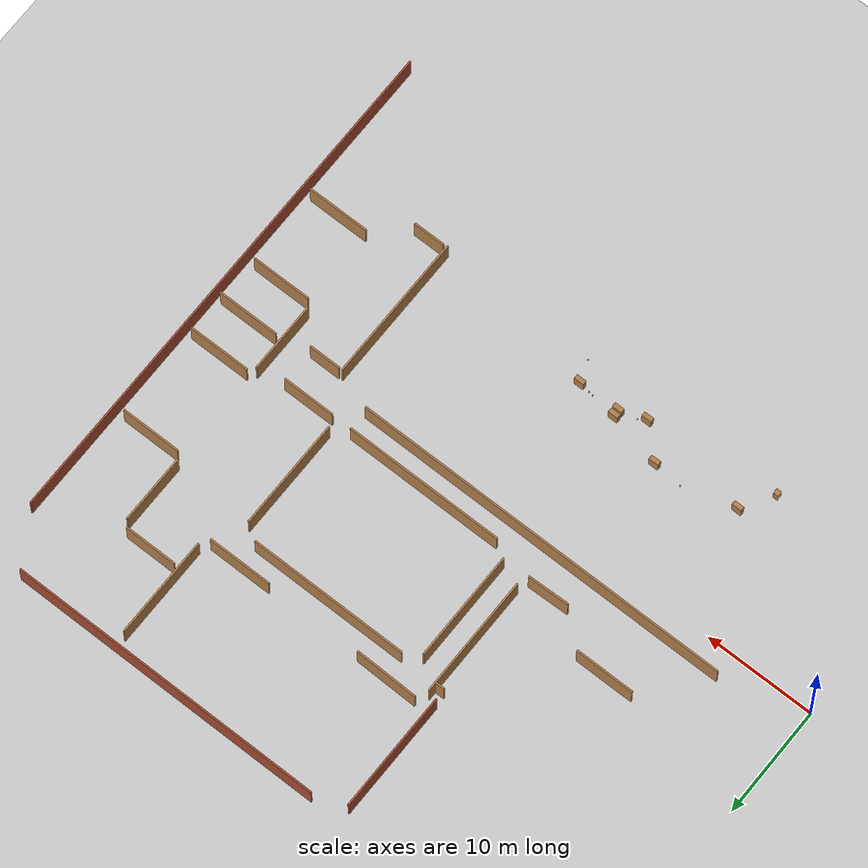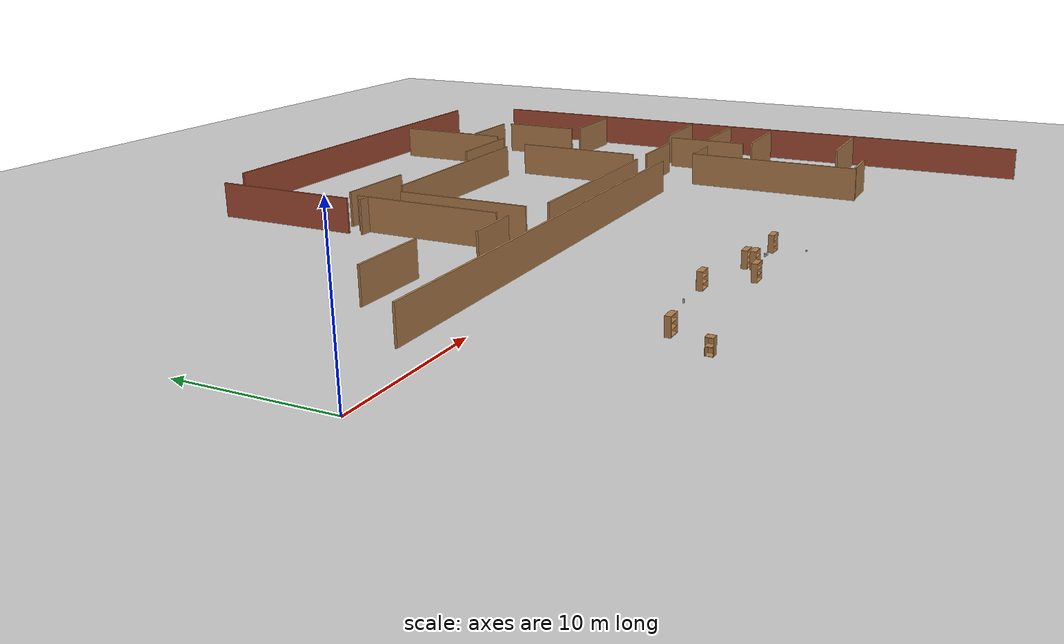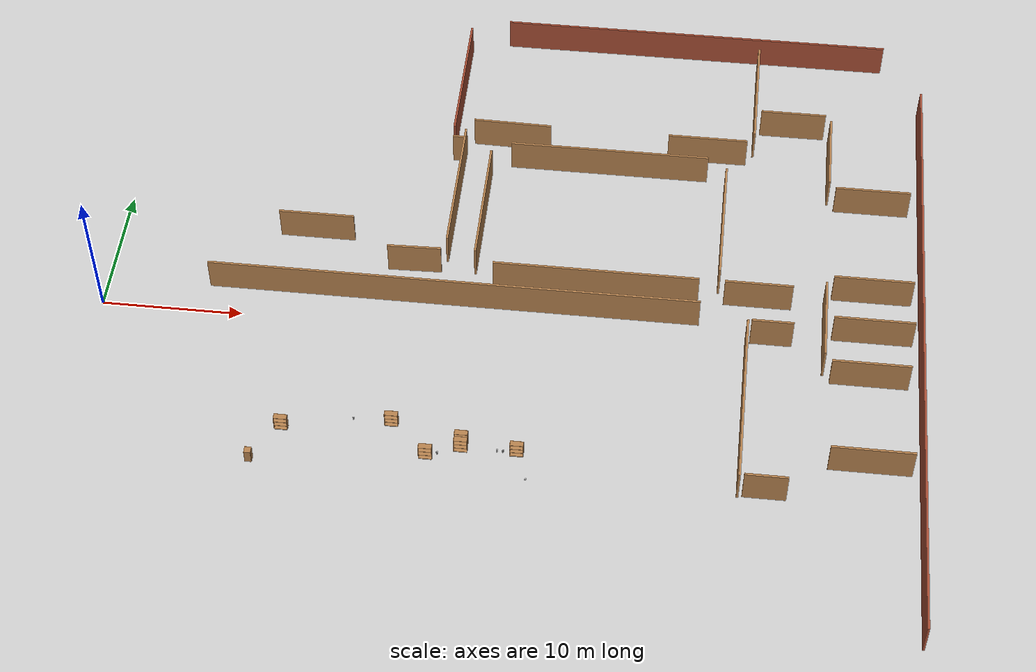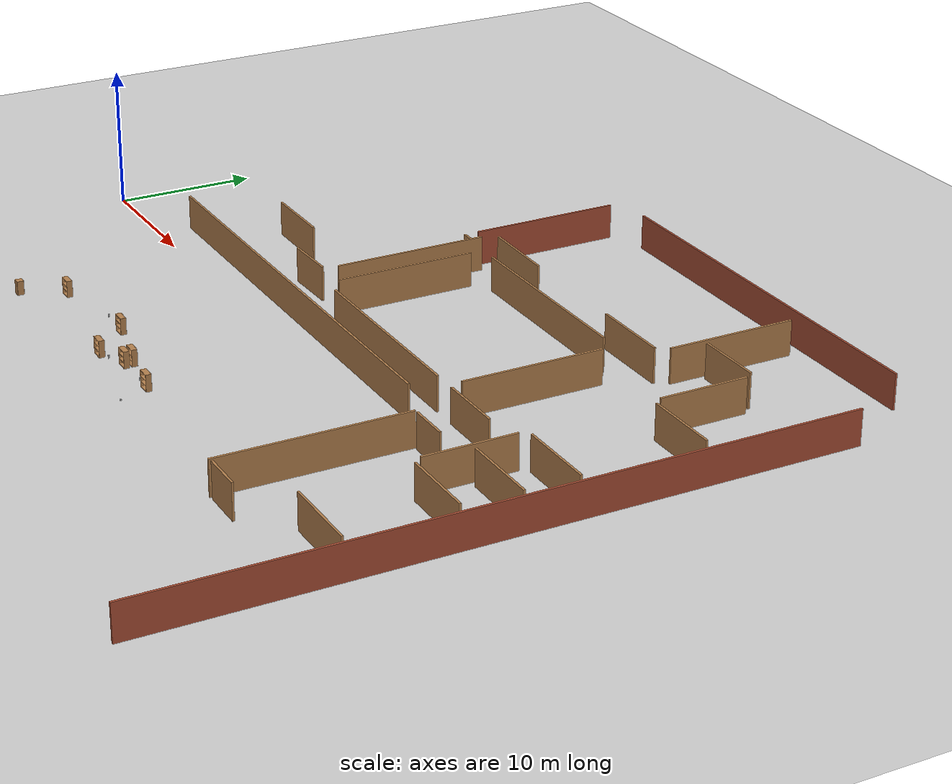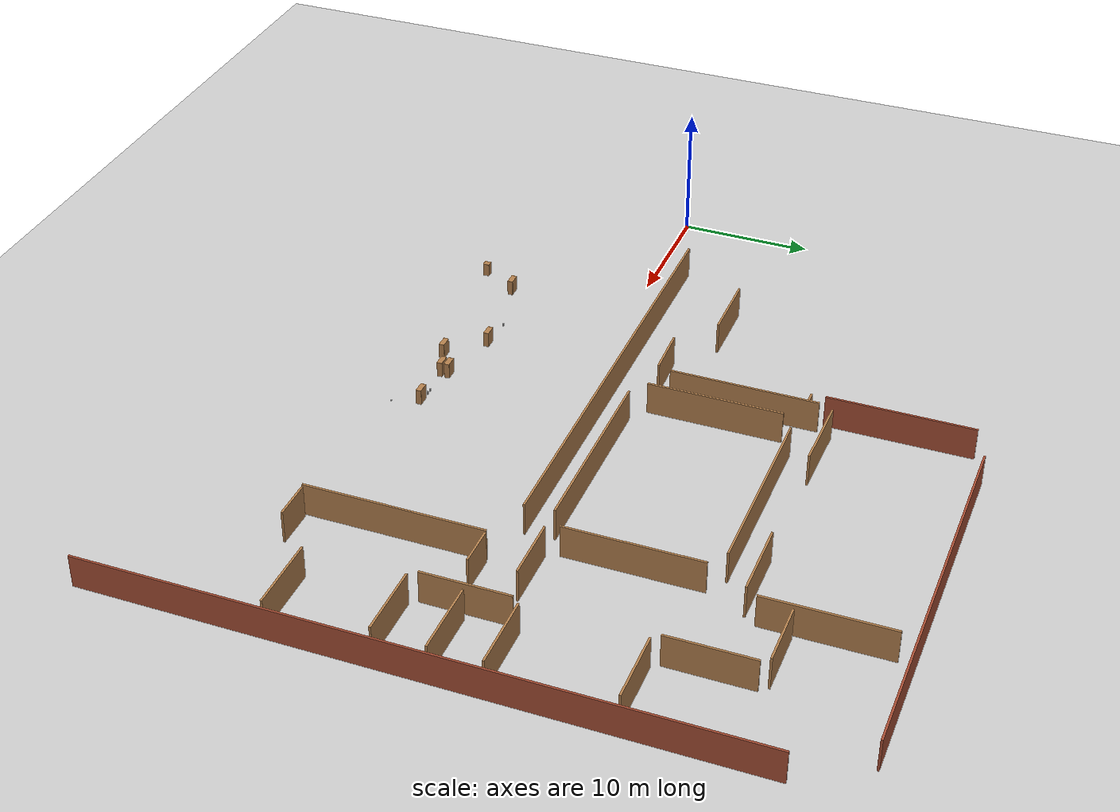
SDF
<sdf version="1.6">
 <world name="default">
  <model name="ground_plane">
   <static>1</static>
   <link name="link">
    <collision name="collision">
     <geometry><plane><normal>0 0 1</normal><size>100 100</size></plane></geometry>
     <surface><friction><ode><mu>100</mu><mu2>50</mu2></ode></friction></surface>
    </collision>
    <visual name="visual">
     <cast_shadows>0</cast_shadows>
     <geometry><plane><normal>0 0 1</normal><size>100 100</size></plane></geometry>
     <material>
      <script><uri>file://media/materials/scripts/gazebo.material</uri><name>Gazebo/Grey</name></script>
     </material>
    </visual>
   </link>
  </model>
  <model name="floorPlan">
   <pose>6.7155 -5.3556 0 0 -0 0</pose>
   <link name="Wall_105">
    <collision name="Wall_105_Collision">
     <geometry><box><size>10.83 0.15 2.5</size></box></geometry>
     <pose>0 0 1.25 0 -0 0</pose>
    </collision>
    <visual name="Wall_105_Visual">
     <pose>0 0 1.25 0 -0 0</pose>
     <geometry><box><size>10.83 0.15 2.5</size></box></geometry>
     <material>
      <script><uri>file://media/materials/scripts/gazebo.material</uri><name>Gazebo/Bricks</name></script>
      <ambient>1 1 1 1</ambient>
     </material>
     <meta><layer>0</layer></meta>
    </visual>
    <pose>16.1718 28.4394 0 0 0 -1.5708</pose>
   </link>
   <link name="Wall_107">
    <collision name="Wall_107_Collision">
     <geometry><box><size>0.83 0.15 2.5</size></box></geometry>
     <pose>0 0 1.25 0 -0 0</pose>
    </collision>
    <visual name="Wall_107_Visual">
     <pose>0 0 1.25 0 -0 0</pose>
     <geometry><box><size>0.83 0.15 2.5</size></box></geometry>
     <material>
      <script><uri>file://media/materials/scripts/gazebo.material</uri><name>Gazebo/Wood</name></script>
      <ambient>1 1 1 1</ambient>
     </material>
     <meta><layer>0</layer></meta>
    </visual>
    <pose>16.5968 22.0144 0 0 -0 0</pose>
   </link>
   <link name="Wall_246">
    <collision name="Wall_246_Collision">
     <geometry><box><size>5.62 0.15 2.5</size></box></geometry>
     <pose>0 0 1.25 0 -0 0</pose>
    </collision>
    <visual name="Wall_246_Visual">
     <pose>0 0 1.25 0 -0 0</pose>
     <geometry><box><size>5.62 0.15 2.5</size></box></geometry>
     <material>
      <script><uri>file://media/materials/scripts/gazebo.material</uri><name>Gazebo/Wood</name></script>
      <ambient>1 1 1 1</ambient>
     </material>
     <meta><layer>0</layer></meta>
    </visual>
    <pose>47.426 7.42213 0 0 -0 0</pose>
   </link>
   <link name="Wall_248">
    <collision name="Wall_248_Collision">
     <geometry><box><size>13.29 0.15 2.5</size></box></geometry>
     <pose>0 0 1.25 0 -0 0</pose>
    </collision>
    <visual name="Wall_248_Visual">
     <pose>0 0 1.25 0 -0 0</pose>
     <geometry><box><size>13.29 0.15 2.5</size></box></geometry>
     <material>
      <script><uri>file://media/materials/scripts/gazebo.material</uri><name>Gazebo/Wood</name></script>
      <ambient>1 1 1 1</ambient>
     </material>
     <meta><layer>0</layer></meta>
    </visual>
    <pose>38.697 -0.105323 0 0 0 -1.57178</pose>
   </link>
   <link name="Wall_30">
    <collision name="Wall_30_Collision">
     <geometry><box><size>34.78 0.15 2.5</size></box></geometry>
     <pose>0 0 1.25 0 -0 0</pose>
    </collision>
    <visual name="Wall_30_Visual">
     <pose>0 0 1.25 0 -0 0</pose>
     <geometry><box><size>34.78 0.15 2.5</size></box></geometry>
     <material>
      <script><uri>file://media/materials/scripts/gazebo.material</uri><name>Gazebo/Wood</name></script>
      <ambient>1 1 1 1</ambient>
     </material>
     <meta><layer>0</layer></meta>
    </visual>
    <pose>17.958 7.79684 0 0 -0 3.14159</pose>
   </link>
   <link name="Wall_40">
    <collision name="Wall_40_Collision">
     <geometry><box><size>3.82 0.15 2.5</size></box></geometry>
     <pose>0 0 1.25 0 -0 0</pose>
    </collision>
    <visual name="Wall_40_Visual">
     <pose>0 0 1.25 0 -0 0</pose>
     <geometry><box><size>3.82 0.15 2.5</size></box></geometry>
     <material>
      <script><uri>file://media/materials/scripts/gazebo.material</uri><name>Gazebo/Wood</name></script>
      <ambient>1 1 1 1</ambient>
     </material>
     <meta><layer>0</layer></meta>
    </visual>
    <pose>14.8546 10.7422 0 0 -0 0.027081</pose>
   </link>
   <link name="Wall_41">
    <collision name="Wall_41_Collision">
     <geometry><box><size>11.04 0.15 2.5</size></box></geometry>
     <pose>0 0 1.25 0 -0 0</pose>
    </collision>
    <visual name="Wall_41_Visual">
     <pose>0 0 1.25 0 -0 0</pose>
     <geometry><box><size>11.04 0.15 2.5</size></box></geometry>
     <material>
      <script><uri>file://media/materials/scripts/gazebo.material</uri><name>Gazebo/Wood</name></script>
      <ambient>1 1 1 1</ambient>
     </material>
     <meta><layer>0</layer></meta>
    </visual>
    <pose>17.0696 17.3122 0 0 -0 1.5708</pose>
   </link>
   <link name="Wall_43">
    <collision name="Wall_43_Collision">
     <geometry><box><size>5.41 0.15 2.5</size></box></geometry>
     <pose>0 0 1.25 0 -0 0</pose>
    </collision>
    <visual name="Wall_43_Visual">
     <pose>0 0 1.25 0 -0 0</pose>
     <geometry><box><size>5.41 0.15 2.5</size></box></geometry>
     <material>
      <script><uri>file://media/materials/scripts/gazebo.material</uri><name>Gazebo/Wood</name></script>
      <ambient>1 1 1 1</ambient>
     </material>
     <meta><layer>0</layer></meta>
    </visual>
    <pose>7.4365 13.1926 0 0 -0 0</pose>
   </link>
   <link name="Wall_45">
    <collision name="Wall_45_Collision">
     <geometry><box><size>14.58 0.15 2.5</size></box></geometry>
     <pose>0 0 1.25 0 -0 0</pose>
    </collision>
    <visual name="Wall_45_Visual">
     <pose>0 0 1.25 0 -0 0</pose>
     <geometry><box><size>14.58 0.15 2.5</size></box></geometry>
     <material>
      <script><uri>file://media/materials/scripts/gazebo.material</uri><name>Gazebo/Wood</name></script>
      <ambient>1 1 1 1</ambient>
     </material>
     <meta><layer>0</layer></meta>
    </visual>
    <pose>27.8734 9.89578 0 0 -0 3.14159</pose>
   </link>
   <link name="Wall_46">
    <collision name="Wall_46_Collision">
     <geometry><box><size>10 0.15 2.5</size></box></geometry>
     <pose>0 0 1.25 0 -0 0</pose>
    </collision>
    <visual name="Wall_46_Visual">
     <pose>0 0 1.25 0 -0 0</pose>
     <geometry><box><size>10 0.15 2.5</size></box></geometry>
     <material>
      <script><uri>file://media/materials/scripts/gazebo.material</uri><name>Gazebo/Wood</name></script>
      <ambient>1 1 1 1</ambient>
     </material>
     <meta><layer>0</layer></meta>
    </visual>
    <pose>19.1984 15.8208 0 0 -0 1.5708</pose>
   </link>
   <link name="Wall_57">
    <collision name="Wall_57_Collision">
     <geometry><box><size>10 0.15 2.5</size></box></geometry>
     <pose>0 0 1.25 0 -0 0</pose>
    </collision>
    <visual name="Wall_57_Visual">
     <pose>0 0 1.25 0 -0 0</pose>
     <geometry><box><size>10 0.15 2.5</size></box></geometry>
     <material>
      <script><uri>file://media/materials/scripts/gazebo.material</uri><name>Gazebo/Wood</name></script>
      <ambient>1 1 1 1</ambient>
     </material>
     <meta><layer>0</layer></meta>
    </visual>
    <pose>36.5484 15.8208 0 0 -0 1.5708</pose>
   </link>
   <link name="Wall_59">
    <collision name="Wall_59_Collision">
     <geometry><box><size>14.58 0.15 2.5</size></box></geometry>
     <pose>0 0 1.25 0 -0 0</pose>
    </collision>
    <visual name="Wall_59_Visual">
     <pose>0 0 1.25 0 -0 0</pose>
     <geometry><box><size>14.58 0.15 2.5</size></box></geometry>
     <material>
      <script><uri>file://media/materials/scripts/gazebo.material</uri><name>Gazebo/Wood</name></script>
      <ambient>1 1 1 1</ambient>
     </material>
     <meta><layer>0</layer></meta>
    </visual>
    <pose>27.8734 21.7458 0 0 -0 0</pose>
   </link>
   <link name="Wall_61">
    <collision name="Wall_61_Collision">
     <geometry><box><size>5.76 0.15 2.5</size></box></geometry>
     <pose>0 0 1.25 0 -0 0</pose>
    </collision>
    <visual name="Wall_61_Visual">
     <pose>0 0 1.25 0 -0 0</pose>
     <geometry><box><size>5.76 0.15 2.5</size></box></geometry>
     <material>
      <script><uri>file://media/materials/scripts/gazebo.material</uri><name>Gazebo/Wood</name></script>
      <ambient>1 1 1 1</ambient>
     </material>
     <meta><layer>0</layer></meta>
    </visual>
    <pose>20.4546 23.8422 0 0 0 -0.017723</pose>
   </link>
   <link name="Wall_63">
    <collision name="Wall_63_Collision">
     <geometry><box><size>5.83 0.15 2.5</size></box></geometry>
     <pose>0 0 1.25 0 -0 0</pose>
    </collision>
    <visual name="Wall_63_Visual">
     <pose>0 0 1.25 0 -0 0</pose>
     <geometry><box><size>5.83 0.15 2.5</size></box></geometry>
     <material>
      <script><uri>file://media/materials/scripts/gazebo.material</uri><name>Gazebo/Wood</name></script>
      <ambient>1 1 1 1</ambient>
     </material>
     <meta><layer>0</layer></meta>
    </visual>
    <pose>35.0287 23.7786 0 0 -0 0</pose>
   </link>
   <link name="Wall_64">
    <collision name="Wall_64_Collision">
     <geometry><box><size>9.16 0.15 2.5</size></box></geometry>
     <pose>0 0 1.25 0 -0 0</pose>
    </collision>
    <visual name="Wall_64_Visual">
     <pose>0 0 1.25 0 -0 0</pose>
     <geometry><box><size>9.16 0.15 2.5</size></box></geometry>
     <material>
      <script><uri>file://media/materials/scripts/gazebo.material</uri><name>Gazebo/Wood</name></script>
      <ambient>1 1 1 1</ambient>
     </material>
     <meta><layer>0</layer></meta>
    </visual>
    <pose>38.4537 29.2036 0 0 -0 1.5708</pose>
   </link>
   <link name="Wall_66">
    <collision name="Wall_66_Collision">
     <geometry><box><size>4.79 0.15 2.5</size></box></geometry>
     <pose>0 0 1.25 0 -0 0</pose>
    </collision>
    <visual name="Wall_66_Visual">
     <pose>0 0 1.25 0 -0 0</pose>
     <geometry><box><size>4.79 0.15 2.5</size></box></geometry>
     <material>
      <script><uri>file://media/materials/scripts/gazebo.material</uri><name>Gazebo/Wood</name></script>
      <ambient>1 1 1 1</ambient>
     </material>
     <meta><layer>0</layer></meta>
    </visual>
    <pose>41.2694 27.0754 0 0 -0 0</pose>
   </link>
   <link name="Wall_67">
    <collision name="Wall_67_Collision">
     <geometry><box><size>6.25 0.15 2.5</size></box></geometry>
     <pose>0 0 1.25 0 -0 0</pose>
    </collision>
    <visual name="Wall_67_Visual">
     <pose>0 0 1.25 0 -0 0</pose>
     <geometry><box><size>6.25 0.15 2.5</size></box></geometry>
     <material>
      <script><uri>file://media/materials/scripts/gazebo.material</uri><name>Gazebo/Wood</name></script>
      <ambient>1 1 1 1</ambient>
     </material>
     <meta><layer>0</layer></meta>
    </visual>
    <pose>44.0694 23.4004 0 0 0 -1.5708</pose>
   </link>
   <link name="Wall_68">
    <collision name="Wall_68_Collision">
     <geometry><box><size>5.41 0.15 2.5</size></box></geometry>
     <pose>0 0 1.25 0 -0 0</pose>
    </collision>
    <visual name="Wall_68_Visual">
     <pose>0 0 1.25 0 -0 0</pose>
     <geometry><box><size>5.41 0.15 2.5</size></box></geometry>
     <material>
      <script><uri>file://media/materials/scripts/gazebo.material</uri><name>Gazebo/Wood</name></script>
      <ambient>1 1 1 1</ambient>
     </material>
     <meta><layer>0</layer></meta>
    </visual>
    <pose>47.2444 19.7254 0 0 -0 0</pose>
   </link>
   <link name="Wall_70">
    <collision name="Wall_70_Collision">
     <geometry><box><size>4.79 0.15 2.5</size></box></geometry>
     <pose>0 0 1.25 0 -0 0</pose>
    </collision>
    <visual name="Wall_70_Visual">
     <pose>0 0 1.25 0 -0 0</pose>
     <geometry><box><size>4.79 0.15 2.5</size></box></geometry>
     <material>
      <script><uri>file://media/materials/scripts/gazebo.material</uri><name>Gazebo/Wood</name></script>
      <ambient>1 1 1 1</ambient>
     </material>
     <meta><layer>0</layer></meta>
    </visual>
    <pose>39.3484 9.89578 0 0 -0 0</pose>
   </link>
   <link name="Wall_72">
    <collision name="Wall_72_Collision">
     <geometry><box><size>5.62 0.15 2.5</size></box></geometry>
     <pose>0 0 1.25 0 -0 0</pose>
    </collision>
    <visual name="Wall_72_Visual">
     <pose>0 0 1.25 0 -0 0</pose>
     <geometry><box><size>5.62 0.15 2.5</size></box></geometry>
     <material>
      <script><uri>file://media/materials/scripts/gazebo.material</uri><name>Gazebo/Wood</name></script>
      <ambient>1 1 1 1</ambient>
     </material>
     <meta><layer>0</layer></meta>
    </visual>
    <pose>47.3585 11.1359 0 0 -0 3.14159</pose>
   </link>
   <link name="Wall_73">
    <collision name="Wall_73_Collision">
     <geometry><box><size>6.46 0.15 2.5</size></box></geometry>
     <pose>0 0 1.25 0 -0 0</pose>
    </collision>
    <visual name="Wall_73_Visual">
     <pose>0 0 1.25 0 -0 0</pose>
     <geometry><box><size>6.46 0.15 2.5</size></box></geometry>
     <material>
      <script><uri>file://media/materials/scripts/gazebo.material</uri><name>Gazebo/Wood</name></script>
      <ambient>1 1 1 1</ambient>
     </material>
     <meta><layer>0</layer></meta>
    </visual>
    <pose>44.0585 7.33585 0 0 0 -1.5708</pose>
   </link>
   <link name="Wall_74">
    <collision name="Wall_74_Collision">
     <geometry><box><size>5.41 0.15 2.5</size></box></geometry>
     <pose>0 0 1.25 0 -0 0</pose>
    </collision>
    <visual name="Wall_74_Visual">
     <pose>0 0 1.25 0 -0 0</pose>
     <geometry><box><size>5.41 0.15 2.5</size></box></geometry>
     <material>
      <script><uri>file://media/materials/scripts/gazebo.material</uri><name>Gazebo/Wood</name></script>
      <ambient>1 1 1 1</ambient>
     </material>
     <meta><layer>0</layer></meta>
    </visual>
    <pose>47.2335 3.53585 0 0 -0 0</pose>
   </link>
   <link name="Wall_76">
    <collision name="Wall_76_Collision">
     <geometry><box><size>2.92 0.15 2.5</size></box></geometry>
     <pose>0 0 1.25 0 -0 0</pose>
    </collision>
    <visual name="Wall_76_Visual">
     <pose>0 0 1.25 0 -0 0</pose>
     <geometry><box><size>2.92 0.15 2.5</size></box></geometry>
     <material>
      <script><uri>file://media/materials/scripts/gazebo.material</uri><name>Gazebo/Wood</name></script>
      <ambient>1 1 1 1</ambient>
     </material>
     <meta><layer>0</layer></meta>
    </visual>
    <pose>40.4167 6.5385 0 0 -0 0</pose>
   </link>
   <link name="Wall_78">
    <collision name="Wall_78_Collision">
     <geometry><box><size>2.92 0.15 2.5</size></box></geometry>
     <pose>0 0 1.25 0 -0 0</pose>
    </collision>
    <visual name="Wall_78_Visual">
     <pose>0 0 1.25 0 -0 0</pose>
     <geometry><box><size>2.92 0.15 2.5</size></box></geometry>
     <material>
      <script><uri>file://media/materials/scripts/gazebo.material</uri><name>Gazebo/Wood</name></script>
      <ambient>1 1 1 1</ambient>
     </material>
     <meta><layer>0</layer></meta>
    </visual>
    <pose>40.4469 -6.6184 0 0 -0 0</pose>
   </link>
   <link name="Wall_80">
    <collision name="Wall_80_Collision">
     <geometry><box><size>5.62 0.15 2.5</size></box></geometry>
     <pose>0 0 1.25 0 -0 0</pose>
    </collision>
    <visual name="Wall_80_Visual">
     <pose>0 0 1.25 0 -0 0</pose>
     <geometry><box><size>5.62 0.15 2.5</size></box></geometry>
     <material>
      <script><uri>file://media/materials/scripts/gazebo.material</uri><name>Gazebo/Wood</name></script>
      <ambient>1 1 1 1</ambient>
     </material>
     <meta><layer>0</layer></meta>
    </visual>
    <pose>47.3649 -3.7753 0 0 -0 0</pose>
   </link>
   <link name="Wall_87">
    <collision name="Wall_87_Collision">
     <geometry><box><size>28.95 0.15 2.5</size></box></geometry>
     <pose>0 0 1.25 0 -0 0</pose>
    </collision>
    <visual name="Wall_87_Visual">
     <pose>0 0 1.25 0 -0 0</pose>
     <geometry><box><size>28.95 0.15 2.5</size></box></geometry>
     <material>
      <script><uri>file://media/materials/scripts/gazebo.material</uri><name>Gazebo/Bricks</name></script>
      <ambient>1 1 1 1</ambient>
     </material>
     <meta><layer>0</layer></meta>
    </visual>
    <pose>33.4718 34.8644 0 0 -0 0</pose>
   </link>
   <link name="Wall_89">
    <collision name="Wall_89_Collision">
     <geometry><box><size>47.4 0.15 2.5</size></box></geometry>
     <pose>0 0 1.25 0 -0 0</pose>
    </collision>
    <visual name="Wall_89_Visual">
     <pose>0 0 1.25 0 -0 0</pose>
     <geometry><box><size>47.4 0.15 2.5</size></box></geometry>
     <material>
      <script><uri>file://media/materials/scripts/gazebo.material</uri><name>Gazebo/Bricks</name></script>
      <ambient>1 1 1 1</ambient>
     </material>
     <meta><layer>0</layer></meta>
    </visual>
    <pose>50.7718 6.48877 0 0 0 -1.5708</pose>
   </link>
   <static>1</static>
  </model>
  <model name="bookshelf">
   <static>1</static>
   <link name="link">
    <inertial><mass>1</mass></inertial>
    <collision name="back">
     <pose>0 0.005 0.6 0 -0 0</pose>
     <geometry><box><size>0.9 0.01 1.2</size></box></geometry>
    </collision>
    <visual name="visual1">
     <pose>0 0.005 0.6 0 -0 0</pose>
     <geometry><box><size>0.9 0.01 1.2</size></box></geometry>
     <material>
      <script><uri>file://media/materials/scripts/gazebo.material</uri><name>Gazebo/Wood</name></script>
     </material>
    </visual>
    <collision name="left_side">
     <pose>0.45 -0.195 0.6 0 -0 0</pose>
     <geometry><box><size>0.02 0.4 1.2</size></box></geometry>
    </collision>
    <visual name="visual2">
     <pose>0.45 -0.195 0.6 0 -0 0</pose>
     <geometry><box><size>0.02 0.4 1.2</size></box></geometry>
     <material>
      <script><uri>file://media/materials/scripts/gazebo.material</uri><name>Gazebo/Wood</name></script>
     </material>
    </visual>
    <collision name="right_side">
     <pose>-0.45 -0.195 0.6 0 -0 0</pose>
     <geometry><box><size>0.02 0.4 1.2</size></box></geometry>
    </collision>
    <visual name="visual3">
     <pose>-0.45 -0.195 0.6 0 -0 0</pose>
     <geometry><box><size>0.02 0.4 1.2</size></box></geometry>
     <material>
      <script><uri>file://media/materials/scripts/gazebo.material</uri><name>Gazebo/Wood</name></script>
     </material>
    </visual>
    <collision name="bottom">
     <pose>0 -0.195 0.03 0 -0 0</pose>
     <geometry><box><size>0.88 0.4 0.06</size></box></geometry>
    </collision>
    <visual name="visual4">
     <pose>0 -0.195 0.03 0 -0 0</pose>
     <geometry><box><size>0.88 0.4 0.06</size></box></geometry>
     <material>
      <script><uri>file://media/materials/scripts/gazebo.material</uri><name>Gazebo/Wood</name></script>
     </material>
    </visual>
    <collision name="top">
     <pose>0 -0.195 1.19 0 -0 0</pose>
     <geometry><box><size>0.88 0.4 0.02</size></box></geometry>
    </collision>
    <visual name="visual5">
     <pose>0 -0.195 1.19 0 -0 0</pose>
     <geometry><box><size>0.88 0.4 0.02</size></box></geometry>
     <material>
      <script><uri>file://media/materials/scripts/gazebo.material</uri><name>Gazebo/Wood</name></script>
     </material>
    </visual>
    <collision name="low_shelf">
     <pose>0 -0.195 0.43 0 -0 0</pose>
     <geometry><box><size>0.88 0.4 0.02</size></box></geometry>
    </collision>
    <visual name="visual6">
     <pose>0 -0.195 0.43 0 -0 0</pose>
     <geometry><box><size>0.88 0.4 0.02</size></box></geometry>
     <material>
      <script><uri>file://media/materials/scripts/gazebo.material</uri><name>Gazebo/Wood</name></script>
     </material>
    </visual>
    <collision name="high_shelf">
     <pose>0 -0.195 0.8 0 -0 0</pose>
     <geometry><box><size>0.88 0.4 0.02</size></box></geometry>
    </collision>
    <visual name="visual7">
     <pose>0 -0.195 0.8 0 -0 0</pose>
     <geometry><box><size>0.88 0.4 0.02</size></box></geometry>
     <material>
      <script><uri>file://media/materials/scripts/gazebo.material</uri><name>Gazebo/Wood</name></script>
     </material>
    </visual>
   </link>
   <pose>26.8277 -9.99114 0 0 -0 0</pose>
  </model>
  <model name="bookshelf_0">
   <static>1</static>
   <link name="link">
    <inertial><mass>1</mass></inertial>
    <collision name="back">
     <pose>0 0.005 0.6 0 -0 0</pose>
     <geometry><box><size>0.9 0.01 1.2</size></box></geometry>
    </collision>
    <visual name="visual1">
     <pose>0 0.005 0.6 0 -0 0</pose>
     <geometry><box><size>0.9 0.01 1.2</size></box></geometry>
     <material>
      <script><uri>file://media/materials/scripts/gazebo.material</uri><name>Gazebo/Wood</name></script>
     </material>
    </visual>
    <collision name="left_side">
     <pose>0.45 -0.195 0.6 0 -0 0</pose>
     <geometry><box><size>0.02 0.4 1.2</size></box></geometry>
    </collision>
    <visual name="visual2">
     <pose>0.45 -0.195 0.6 0 -0 0</pose>
     <geometry><box><size>0.02 0.4 1.2</size></box></geometry>
     <material>
      <script><uri>file://media/materials/scripts/gazebo.material</uri><name>Gazebo/Wood</name></script>
     </material>
    </visual>
    <collision name="right_side">
     <pose>-0.45 -0.195 0.6 0 -0 0</pose>
     <geometry><box><size>0.02 0.4 1.2</size></box></geometry>
    </collision>
    <visual name="visual3">
     <pose>-0.45 -0.195 0.6 0 -0 0</pose>
     <geometry><box><size>0.02 0.4 1.2</size></box></geometry>
     <material>
      <script><uri>file://media/materials/scripts/gazebo.material</uri><name>Gazebo/Wood</name></script>
     </material>
    </visual>
    <collision name="bottom">
     <pose>0 -0.195 0.03 0 -0 0</pose>
     <geometry><box><size>0.88 0.4 0.06</size></box></geometry>
    </collision>
    <visual name="visual4">
     <pose>0 -0.195 0.03 0 -0 0</pose>
     <geometry><box><size>0.88 0.4 0.06</size></box></geometry>
     <material>
      <script><uri>file://media/materials/scripts/gazebo.material</uri><name>Gazebo/Wood</name></script>
     </material>
    </visual>
    <collision name="top">
     <pose>0 -0.195 1.19 0 -0 0</pose>
     <geometry><box><size>0.88 0.4 0.02</size></box></geometry>
    </collision>
    <visual name="visual5">
     <pose>0 -0.195 1.19 0 -0 0</pose>
     <geometry><box><size>0.88 0.4 0.02</size></box></geometry>
     <material>
      <script><uri>file://media/materials/scripts/gazebo.material</uri><name>Gazebo/Wood</name></script>
     </material>
    </visual>
    <collision name="low_shelf">
     <pose>0 -0.195 0.43 0 -0 0</pose>
     <geometry><box><size>0.88 0.4 0.02</size></box></geometry>
    </collision>
    <visual name="visual6">
     <pose>0 -0.195 0.43 0 -0 0</pose>
     <geometry><box><size>0.88 0.4 0.02</size></box></geometry>
     <material>
      <script><uri>file://media/materials/scripts/gazebo.material</uri><name>Gazebo/Wood</name></script>
     </material>
    </visual>
    <collision name="high_shelf">
     <pose>0 -0.195 0.8 0 -0 0</pose>
     <geometry><box><size>0.88 0.4 0.02</size></box></geometry>
    </collision>
    <visual name="visual7">
     <pose>0 -0.195 0.8 0 -0 0</pose>
     <geometry><box><size>0.88 0.4 0.02</size></box></geometry>
     <material>
      <script><uri>file://media/materials/scripts/gazebo.material</uri><name>Gazebo/Wood</name></script>
     </material>
    </visual>
   </link>
   <pose>30.6013 -9.97123 0 0 -0 0</pose>
  </model>
  <model name="beer_2">
   <link name="link">
    <pose>0 0 0.115 0 -0 0</pose>
    <inertial>
     <mass>0.39</mass>
     <inertia><ixx>0.00058</ixx><ixy>0</ixy><ixz>0</ixz><iyy>0.00058</iyy><iyz>0</iyz><izz>0.00019</izz></inertia>
    </inertial>
    <collision name="collision">
     <geometry><cylinder><radius>0.055</radius><length>0.23</length></cylinder></geometry>
    </collision>
    <visual name="visual">
     <geometry><cylinder><radius>0.055</radius><length>0.23</length></cylinder></geometry>
     <material>
      <script>
       <uri>model://beer/materials/scripts</uri>
       <uri>model://beer/materials/textures</uri>
       <name>Beer/Diffuse</name>
      </script>
     </material>
    </visual>
   </link>
   <pose>25.2902 -10.6795 -2e-06 0 0 -0.000108</pose>
  </model>
  <model name="beer_3">
   <link name="link">
    <pose>0 0 0.115 0 -0 0</pose>
    <inertial>
     <mass>0.39</mass>
     <inertia><ixx>0.00058</ixx><ixy>0</ixy><ixz>0</ixz><iyy>0.00058</iyy><iyz>0</iyz><izz>0.00019</izz></inertia>
    </inertial>
    <collision name="collision">
     <geometry><cylinder><radius>0.055</radius><length>0.23</length></cylinder></geometry>
    </collision>
    <visual name="visual">
     <geometry><cylinder><radius>0.055</radius><length>0.23</length></cylinder></geometry>
     <material>
      <script>
       <uri>model://beer/materials/scripts</uri>
       <uri>model://beer/materials/textures</uri>
       <name>Beer/Diffuse</name>
      </script>
     </material>
    </visual>
   </link>
   <pose>29.6666 -10.0919 -7e-06 0 0 -0.000105</pose>
  </model>
  <model name="beer_4">
   <link name="link">
    <pose>0 0 0.115 0 -0 0</pose>
    <inertial>
     <mass>0.39</mass>
     <inertia><ixx>0.00058</ixx><ixy>0</ixy><ixz>0</ixz><iyy>0.00058</iyy><iyz>0</iyz><izz>0.00019</izz></inertia>
    </inertial>
    <collision name="collision">
     <geometry><cylinder><radius>0.055</radius><length>0.23</length></cylinder></geometry>
    </collision>
    <visual name="visual">
     <geometry><cylinder><radius>0.055</radius><length>0.23</length></cylinder></geometry>
     <material>
      <script>
       <uri>model://beer/materials/scripts</uri>
       <uri>model://beer/materials/textures</uri>
       <name>Beer/Diffuse</name>
      </script>
     </material>
    </visual>
   </link>
   <pose>29.2588 -10.0646 -2e-06 0 0 -0.000106</pose>
  </model>
  <model name="camera">
   <pose>31.3885 -12.1893 0.05 0 0 -1.2e-05</pose>
   <link name="link">
    <inertial>
     <mass>0.1</mass>
     <inertia>
      <ixx>0.000166667</ixx>
      <iyy>0.000166667</iyy>
      <izz>0.000166667</izz>
      <ixy>0</ixy>
      <ixz>0</ixz>
      <iyz>0</iyz>
     </inertia>
    </inertial>
    <collision name="collision"><geometry><box><size>0.1 0.1 0.1</size></box></geometry></collision>
    <visual name="visual"><geometry><box><size>0.1 0.1 0.1</size></box></geometry></visual>
    <sensor name="camera" type="camera">
     <camera name="__default__">
      <horizontal_fov>1.047</horizontal_fov>
      <image><width>320</width><height>240</height></image>
      <clip><near>0.1</near><far>100</far></clip>
     </camera>
     <always_on>1</always_on>
     <update_rate>30</update_rate>
     <visualize>1</visualize>
    </sensor>
   </link>
  </model>
  <model name="bookshelf_3">
   <static>1</static>
   <link name="link">
    <inertial><mass>1</mass></inertial>
    <collision name="back">
     <pose>0 0.005 0.6 0 -0 0</pose>
     <geometry><box><size>0.9 0.01 1.2</size></box></geometry>
    </collision>
    <visual name="visual1">
     <pose>0 0.005 0.6 0 -0 0</pose>
     <geometry><box><size>0.9 0.01 1.2</size></box></geometry>
     <material>
      <script><uri>file://media/materials/scripts/gazebo.material</uri><name>Gazebo/Wood</name></script>
     </material>
    </visual>
    <collision name="left_side">
     <pose>0.45 -0.195 0.6 0 -0 0</pose>
     <geometry><box><size>0.02 0.4 1.2</size></box></geometry>
    </collision>
    <visual name="visual2">
     <pose>0.45 -0.195 0.6 0 -0 0</pose>
     <geometry><box><size>0.02 0.4 1.2</size></box></geometry>
     <material>
      <script><uri>file://media/materials/scripts/gazebo.material</uri><name>Gazebo/Wood</name></script>
     </material>
    </visual>
    <collision name="right_side">
     <pose>-0.45 -0.195 0.6 0 -0 0</pose>
     <geometry><box><size>0.02 0.4 1.2</size></box></geometry>
    </collision>
    <visual name="visual3">
     <pose>-0.45 -0.195 0.6 0 -0 0</pose>
     <geometry><box><size>0.02 0.4 1.2</size></box></geometry>
     <material>
      <script><uri>file://media/materials/scripts/gazebo.material</uri><name>Gazebo/Wood</name></script>
     </material>
    </visual>
    <collision name="bottom">
     <pose>0 -0.195 0.03 0 -0 0</pose>
     <geometry><box><size>0.88 0.4 0.06</size></box></geometry>
    </collision>
    <visual name="visual4">
     <pose>0 -0.195 0.03 0 -0 0</pose>
     <geometry><box><size>0.88 0.4 0.06</size></box></geometry>
     <material>
      <script><uri>file://media/materials/scripts/gazebo.material</uri><name>Gazebo/Wood</name></script>
     </material>
    </visual>
    <collision name="top">
     <pose>0 -0.195 1.19 0 -0 0</pose>
     <geometry><box><size>0.88 0.4 0.02</size></box></geometry>
    </collision>
    <visual name="visual5">
     <pose>0 -0.195 1.19 0 -0 0</pose>
     <geometry><box><size>0.88 0.4 0.02</size></box></geometry>
     <material>
      <script><uri>file://media/materials/scripts/gazebo.material</uri><name>Gazebo/Wood</name></script>
     </material>
    </visual>
    <collision name="low_shelf">
     <pose>0 -0.195 0.43 0 -0 0</pose>
     <geometry><box><size>0.88 0.4 0.02</size></box></geometry>
    </collision>
    <visual name="visual6">
     <pose>0 -0.195 0.43 0 -0 0</pose>
     <geometry><box><size>0.88 0.4 0.02</size></box></geometry>
     <material>
      <script><uri>file://media/materials/scripts/gazebo.material</uri><name>Gazebo/Wood</name></script>
     </material>
    </visual>
    <collision name="high_shelf">
     <pose>0 -0.195 0.8 0 -0 0</pose>
     <geometry><box><size>0.88 0.4 0.02</size></box></geometry>
    </collision>
    <visual name="visual7">
     <pose>0 -0.195 0.8 0 -0 0</pose>
     <geometry><box><size>0.88 0.4 0.02</size></box></geometry>
     <material>
      <script><uri>file://media/materials/scripts/gazebo.material</uri><name>Gazebo/Wood</name></script>
     </material>
    </visual>
   </link>
   <pose>24.5561 -10.8214 0 0 -0 0</pose>
  </model>
  <model name="bookshelf_6">
   <static>1</static>
   <link name="link">
    <inertial><mass>1</mass></inertial>
    <collision name="back">
     <pose>0 0.005 0.6 0 -0 0</pose>
     <geometry><box><size>0.9 0.01 1.2</size></box></geometry>
    </collision>
    <visual name="visual1">
     <pose>0 0.005 0.6 0 -0 0</pose>
     <geometry><box><size>0.9 0.01 1.2</size></box></geometry>
     <material>
      <script><uri>file://media/materials/scripts/gazebo.material</uri><name>Gazebo/Wood</name></script>
     </material>
    </visual>
    <collision name="left_side">
     <pose>0.45 -0.195 0.6 0 -0 0</pose>
     <geometry><box><size>0.02 0.4 1.2</size></box></geometry>
    </collision>
    <visual name="visual2">
     <pose>0.45 -0.195 0.6 0 -0 0</pose>
     <geometry><box><size>0.02 0.4 1.2</size></box></geometry>
     <material>
      <script><uri>file://media/materials/scripts/gazebo.material</uri><name>Gazebo/Wood</name></script>
     </material>
    </visual>
    <collision name="right_side">
     <pose>-0.45 -0.195 0.6 0 -0 0</pose>
     <geometry><box><size>0.02 0.4 1.2</size></box></geometry>
    </collision>
    <visual name="visual3">
     <pose>-0.45 -0.195 0.6 0 -0 0</pose>
     <geometry><box><size>0.02 0.4 1.2</size></box></geometry>
     <material>
      <script><uri>file://media/materials/scripts/gazebo.material</uri><name>Gazebo/Wood</name></script>
     </material>
    </visual>
    <collision name="bottom">
     <pose>0 -0.195 0.03 0 -0 0</pose>
     <geometry><box><size>0.88 0.4 0.06</size></box></geometry>
    </collision>
    <visual name="visual4">
     <pose>0 -0.195 0.03 0 -0 0</pose>
     <geometry><box><size>0.88 0.4 0.06</size></box></geometry>
     <material>
      <script><uri>file://media/materials/scripts/gazebo.material</uri><name>Gazebo/Wood</name></script>
     </material>
    </visual>
    <collision name="top">
     <pose>0 -0.195 1.19 0 -0 0</pose>
     <geometry><box><size>0.88 0.4 0.02</size></box></geometry>
    </collision>
    <visual name="visual5">
     <pose>0 -0.195 1.19 0 -0 0</pose>
     <geometry><box><size>0.88 0.4 0.02</size></box></geometry>
     <material>
      <script><uri>file://media/materials/scripts/gazebo.material</uri><name>Gazebo/Wood</name></script>
     </material>
    </visual>
    <collision name="low_shelf">
     <pose>0 -0.195 0.43 0 -0 0</pose>
     <geometry><box><size>0.88 0.4 0.02</size></box></geometry>
    </collision>
    <visual name="visual6">
     <pose>0 -0.195 0.43 0 -0 0</pose>
     <geometry><box><size>0.88 0.4 0.02</size></box></geometry>
     <material>
      <script><uri>file://media/materials/scripts/gazebo.material</uri><name>Gazebo/Wood</name></script>
     </material>
    </visual>
    <collision name="high_shelf">
     <pose>0 -0.195 0.8 0 -0 0</pose>
     <geometry><box><size>0.88 0.4 0.02</size></box></geometry>
    </collision>
    <visual name="visual7">
     <pose>0 -0.195 0.8 0 -0 0</pose>
     <geometry><box><size>0.88 0.4 0.02</size></box></geometry>
     <material>
      <script><uri>file://media/materials/scripts/gazebo.material</uri><name>Gazebo/Wood</name></script>
     </material>
    </visual>
   </link>
   <pose>26.8015 -9.43726 0 0 -0 0</pose>
  </model>
  <model name="bookshelf_3_clone">
   <static>1</static>
   <link name="link">
    <inertial><mass>1</mass></inertial>
    <collision name="back">
     <pose>0 0.005 0.6 0 -0 0</pose>
     <geometry><box><size>0.9 0.01 1.2</size></box></geometry>
    </collision>
    <visual name="visual1">
     <pose>0 0.005 0.6 0 -0 0</pose>
     <geometry><box><size>0.9 0.01 1.2</size></box></geometry>
     <material>
      <script><uri>file://media/materials/scripts/gazebo.material</uri><name>Gazebo/Wood</name></script>
     </material>
    </visual>
    <collision name="left_side">
     <pose>0.45 -0.195 0.6 0 -0 0</pose>
     <geometry><box><size>0.02 0.4 1.2</size></box></geometry>
    </collision>
    <visual name="visual2">
     <pose>0.45 -0.195 0.6 0 -0 0</pose>
     <geometry><box><size>0.02 0.4 1.2</size></box></geometry>
     <material>
      <script><uri>file://media/materials/scripts/gazebo.material</uri><name>Gazebo/Wood</name></script>
     </material>
    </visual>
    <collision name="right_side">
     <pose>-0.45 -0.195 0.6 0 -0 0</pose>
     <geometry><box><size>0.02 0.4 1.2</size></box></geometry>
    </collision>
    <visual name="visual3">
     <pose>-0.45 -0.195 0.6 0 -0 0</pose>
     <geometry><box><size>0.02 0.4 1.2</size></box></geometry>
     <material>
      <script><uri>file://media/materials/scripts/gazebo.material</uri><name>Gazebo/Wood</name></script>
     </material>
    </visual>
    <collision name="bottom">
     <pose>0 -0.195 0.03 0 -0 0</pose>
     <geometry><box><size>0.88 0.4 0.06</size></box></geometry>
    </collision>
    <visual name="visual4">
     <pose>0 -0.195 0.03 0 -0 0</pose>
     <geometry><box><size>0.88 0.4 0.06</size></box></geometry>
     <material>
      <script><uri>file://media/materials/scripts/gazebo.material</uri><name>Gazebo/Wood</name></script>
     </material>
    </visual>
    <collision name="top">
     <pose>0 -0.195 1.19 0 -0 0</pose>
     <geometry><box><size>0.88 0.4 0.02</size></box></geometry>
    </collision>
    <visual name="visual5">
     <pose>0 -0.195 1.19 0 -0 0</pose>
     <geometry><box><size>0.88 0.4 0.02</size></box></geometry>
     <material>
      <script><uri>file://media/materials/scripts/gazebo.material</uri><name>Gazebo/Wood</name></script>
     </material>
    </visual>
    <collision name="low_shelf">
     <pose>0 -0.195 0.43 0 -0 0</pose>
     <geometry><box><size>0.88 0.4 0.02</size></box></geometry>
    </collision>
    <visual name="visual6">
     <pose>0 -0.195 0.43 0 -0 0</pose>
     <geometry><box><size>0.88 0.4 0.02</size></box></geometry>
     <material>
      <script><uri>file://media/materials/scripts/gazebo.material</uri><name>Gazebo/Wood</name></script>
     </material>
    </visual>
    <collision name="high_shelf">
     <pose>0 -0.195 0.8 0 -0 0</pose>
     <geometry><box><size>0.88 0.4 0.02</size></box></geometry>
    </collision>
    <visual name="visual7">
     <pose>0 -0.195 0.8 0 -0 0</pose>
     <geometry><box><size>0.88 0.4 0.02</size></box></geometry>
     <material>
      <script><uri>file://media/materials/scripts/gazebo.material</uri><name>Gazebo/Wood</name></script>
     </material>
    </visual>
   </link>
   <pose>21.9225 -8.3428 0 0 -0 0</pose>
  </model>
  <model name="bookshelf_7">
   <static>1</static>
   <link name="link">
    <inertial><mass>1</mass></inertial>
    <collision name="back">
     <pose>0 0.005 0.6 0 -0 0</pose>
     <geometry><box><size>0.9 0.01 1.2</size></box></geometry>
    </collision>
    <visual name="visual1">
     <pose>0 0.005 0.6 0 -0 0</pose>
     <geometry><box><size>0.9 0.01 1.2</size></box></geometry>
     <material>
      <script><uri>file://media/materials/scripts/gazebo.material</uri><name>Gazebo/Wood</name></script>
     </material>
    </visual>
    <collision name="left_side">
     <pose>0.45 -0.195 0.6 0 -0 0</pose>
     <geometry><box><size>0.02 0.4 1.2</size></box></geometry>
    </collision>
    <visual name="visual2">
     <pose>0.45 -0.195 0.6 0 -0 0</pose>
     <geometry><box><size>0.02 0.4 1.2</size></box></geometry>
     <material>
      <script><uri>file://media/materials/scripts/gazebo.material</uri><name>Gazebo/Wood</name></script>
     </material>
    </visual>
    <collision name="right_side">
     <pose>-0.45 -0.195 0.6 0 -0 0</pose>
     <geometry><box><size>0.02 0.4 1.2</size></box></geometry>
    </collision>
    <visual name="visual3">
     <pose>-0.45 -0.195 0.6 0 -0 0</pose>
     <geometry><box><size>0.02 0.4 1.2</size></box></geometry>
     <material>
      <script><uri>file://media/materials/scripts/gazebo.material</uri><name>Gazebo/Wood</name></script>
     </material>
    </visual>
    <collision name="bottom">
     <pose>0 -0.195 0.03 0 -0 0</pose>
     <geometry><box><size>0.88 0.4 0.06</size></box></geometry>
    </collision>
    <visual name="visual4">
     <pose>0 -0.195 0.03 0 -0 0</pose>
     <geometry><box><size>0.88 0.4 0.06</size></box></geometry>
     <material>
      <script><uri>file://media/materials/scripts/gazebo.material</uri><name>Gazebo/Wood</name></script>
     </material>
    </visual>
    <collision name="top">
     <pose>0 -0.195 1.19 0 -0 0</pose>
     <geometry><box><size>0.88 0.4 0.02</size></box></geometry>
    </collision>
    <visual name="visual5">
     <pose>0 -0.195 1.19 0 -0 0</pose>
     <geometry><box><size>0.88 0.4 0.02</size></box></geometry>
     <material>
      <script><uri>file://media/materials/scripts/gazebo.material</uri><name>Gazebo/Wood</name></script>
     </material>
    </visual>
    <collision name="low_shelf">
     <pose>0 -0.195 0.43 0 -0 0</pose>
     <geometry><box><size>0.88 0.4 0.02</size></box></geometry>
    </collision>
    <visual name="visual6">
     <pose>0 -0.195 0.43 0 -0 0</pose>
     <geometry><box><size>0.88 0.4 0.02</size></box></geometry>
     <material>
      <script><uri>file://media/materials/scripts/gazebo.material</uri><name>Gazebo/Wood</name></script>
     </material>
    </visual>
    <collision name="high_shelf">
     <pose>0 -0.195 0.8 0 -0 0</pose>
     <geometry><box><size>0.88 0.4 0.02</size></box></geometry>
    </collision>
    <visual name="visual7">
     <pose>0 -0.195 0.8 0 -0 0</pose>
     <geometry><box><size>0.88 0.4 0.02</size></box></geometry>
     <material>
      <script><uri>file://media/materials/scripts/gazebo.material</uri><name>Gazebo/Wood</name></script>
     </material>
    </visual>
   </link>
   <pose>14.5445 -9.40583 0 0 -0 0</pose>
  </model>
  <model name="beer_6">
   <link name="link">
    <pose>0 0 0.115 0 -0 0</pose>
    <inertial>
     <mass>0.39</mass>
     <inertia><ixx>0.00058</ixx><ixy>0</ixy><ixz>0</ixz><iyy>0.00058</iyy><iyz>0</iyz><izz>0.00019</izz></inertia>
    </inertial>
    <collision name="collision">
     <geometry><cylinder><radius>0.055</radius><length>0.23</length></cylinder></geometry>
    </collision>
    <visual name="visual">
     <geometry><cylinder><radius>0.055</radius><length>0.23</length></cylinder></geometry>
     <material>
      <script>
       <uri>model://beer/materials/scripts</uri>
       <uri>model://beer/materials/textures</uri>
       <name>Beer/Diffuse</name>
      </script>
     </material>
    </visual>
   </link>
   <pose>19.2888 -8.41546 -2e-06 0 0 -4.6e-05</pose>
  </model>
  <model name="cabinet_3">
   <static>1</static>
   <link name="cabinet_bottom_plate">
    <inertial>
     <pose>0 0 -1 0 -0 0</pose>
     <inertia><ixx>2.05</ixx><ixy>0</ixy><ixz>0</ixz><iyy>2.05</iyy><iyz>0</iyz><izz>2.05</izz></inertia>
     <mass>25</mass>
    </inertial>
    <collision name="cabinet_bottom_plate_geom">
     <pose>0 0 0.01 0 -0 0</pose>
     <geometry><box><size>0.45 0.45 0.02</size></box></geometry>
    </collision>
    <visual name="cabinet_bottom_plate_geom_visual">
     <pose>0 0 0.01 0 -0 0</pose>
     <geometry><box><size>0.45 0.45 0.02</size></box></geometry>
     <material>
      <script><uri>file://media/materials/scripts/gazebo.material</uri><name>Gazebo/Wood</name></script>
     </material>
    </visual>
    <collision name="cabinet_bottom_plate_geom_cabinet_back_plate">
     <pose>0.235 0 0.51 0 -0 0</pose>
     <geometry><box><size>0.02 0.45 1.02</size></box></geometry>
    </collision>
    <visual name="cabinet_bottom_plate_geom_cabinet_back_plate_visual">
     <pose>0.235 0 0.51 0 -0 0</pose>
     <geometry><box><size>0.02 0.45 1.02</size></box></geometry>
     <material>
      <script><uri>file://media/materials/scripts/gazebo.material</uri><name>Gazebo/Wood</name></script>
     </material>
    </visual>
    <collision name="cabinet_bottom_plate_geom_cabinet_left_plate">
     <pose>0 0.235 0.51 0 -0 0</pose>
     <geometry><box><size>0.45 0.02 1.02</size></box></geometry>
    </collision>
    <visual name="cabinet_bottom_plate_geom_cabinet_left_plate_visual">
     <pose>0 0.235 0.51 0 -0 0</pose>
     <geometry><box><size>0.45 0.02 1.02</size></box></geometry>
     <material>
      <script><uri>file://media/materials/scripts/gazebo.material</uri><name>Gazebo/Wood</name></script>
     </material>
    </visual>
    <collision name="cabinet_bottom_plate_geom_cabinet_middle_plate">
     <pose>0 0 0.51 0 -0 0</pose>
     <geometry><box><size>0.45 0.45 0.02</size></box></geometry>
    </collision>
    <visual name="cabinet_bottom_plate_geom_cabinet_middle_plate_visual">
     <pose>0 0 0.51 0 -0 0</pose>
     <geometry><box><size>0.45 0.45 0.02</size></box></geometry>
     <material>
      <script><uri>file://media/materials/scripts/gazebo.material</uri><name>Gazebo/Wood</name></script>
     </material>
    </visual>
    <collision name="cabinet_bottom_plate_geom_cabinet_right_plate">
     <pose>0 -0.235 0.51 0 -0 0</pose>
     <geometry><box><size>0.45 0.02 1.02</size></box></geometry>
    </collision>
    <visual name="cabinet_bottom_plate_geom_cabinet_right_plate_visual">
     <pose>0 -0.235 0.51 0 -0 0</pose>
     <geometry><box><size>0.45 0.02 1.02</size></box></geometry>
     <material>
      <script><uri>file://media/materials/scripts/gazebo.material</uri><name>Gazebo/Wood</name></script>
     </material>
    </visual>
    <collision name="cabinet_bottom_plate_geom_cabinet_top_plate">
     <pose>0 0 1.01 0 -0 0</pose>
     <geometry><box><size>0.45 0.45 0.02</size></box></geometry>
    </collision>
    <visual name="cabinet_bottom_plate_geom_cabinet_top_plate_visual">
     <pose>0 0 1.01 0 -0 0</pose>
     <geometry><box><size>0.45 0.45 0.02</size></box></geometry>
     <material>
      <script><uri>file://media/materials/scripts/gazebo.material</uri><name>Gazebo/Wood</name></script>
     </material>
    </visual>
   </link>
   <pose>12.8435 -12.4294 0 0 -0 0</pose>
  </model>
 </world>
</sdf>
